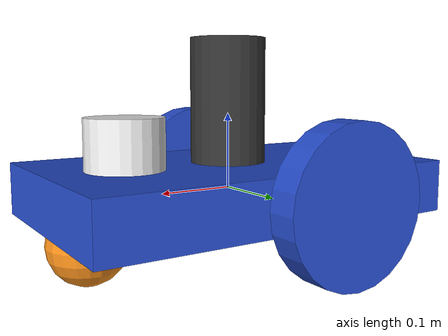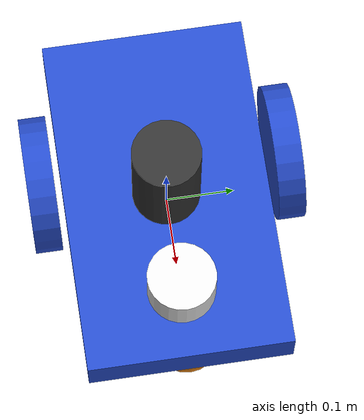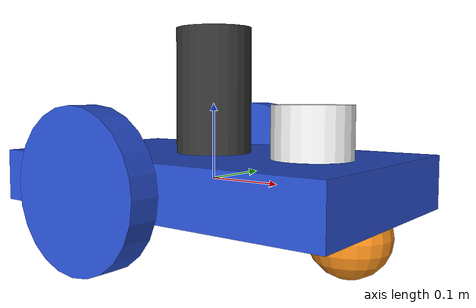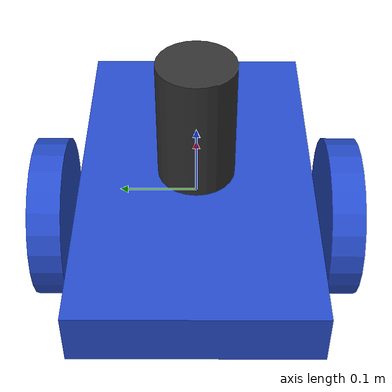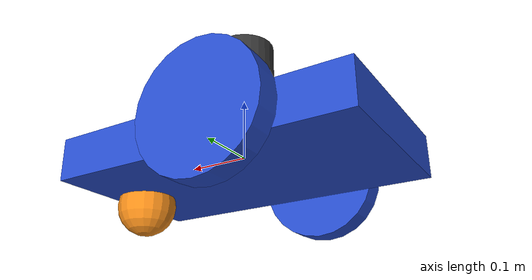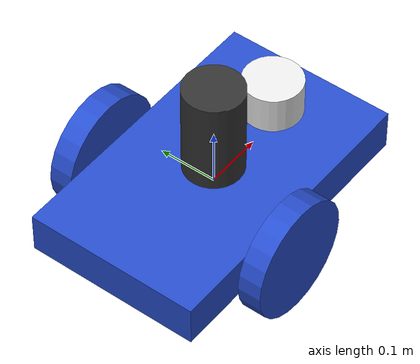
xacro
<?xml version="1.0" ?>
<robot name="m2wr" xmlns:xacro="http://www.ros.org/wiki/xacro">
  <xacro:property name="M_PI" value="3.1415926535897931" />

  <xacro:include filename="$(find m2wr_description)/urdf/materials.xacro" />
  <xacro:include filename="$(find m2wr_description)/urdf/m2wr.gazebo" />
  <xacro:include filename="$(find m2wr_description)/urdf/macros.xacro" />

  <link name="link_chassis">
    <!-- pose and inertial -->
    <pose>0 0 0.1 0 0 0</pose>
    <inertial>
      <mass value="5"/>
      <origin rpy="0 0 0" xyz="0 0 0.1"/>
      <inertia ixx="0.0395416666667" ixy="0" ixz="0" iyy="0.106208333333" iyz="0" izz="0.106208333333"/>
    </inertial>
    <!-- body -->
    <collision name="collision_chassis">
      <geometry>
        <box size="0.5 0.3 0.07"/>
      </geometry>
    </collision>
    <visual>
      <origin rpy="0 0 0" xyz="0 0 0"/>
      <geometry>
        <box size="0.5 0.3 0.07"/>
      </geometry>
      <material name="blue"/>
    </visual>
    <!-- caster front-->
    <collision name="caster_front_collision">
      <origin rpy=" 0 0 0" xyz="0.35 0 -0.05"/>
      <geometry>
        <sphere radius="0.05"/>
      </geometry>
      <surface>
        <friction>
          <ode>
            <mu>0</mu>
            <mu2>0</mu2>
            <slip1>1.0</slip1>
            <slip2>1.0</slip2>
          </ode>
        </friction>
      </surface>
    </collision>
    <visual name="caster_front_visual">
      <origin rpy=" 0 0 0" xyz="0.2 0 -0.05"/>
      <geometry>
        <sphere radius="0.05"/>
      </geometry>
    </visual>>
  </link>

  <link name="sensor_laser">
    <inertial>
      <origin xyz="0 0 0" rpy="0 0 0" />
      <mass value="1" />
      <xacro:cylinder_inertia mass="1" r="0.05" l="0.1" />
    </inertial>

    <visual>
      <origin xyz="0 0 0" rpy="0 0 0" />
      <geometry>
        <cylinder radius="0.05" length="0.1"/>
      </geometry>
      <material name="white" />
    </visual>

    <collision>
      <origin xyz="0 0 0" rpy="0 0 0"/>
      <geometry>
        <cylinder radius="0.05" length="0.1"/>
      </geometry>
    </collision>
  </link>

  <joint name="joint_sensor_laser" type="fixed">
    <origin xyz="0.15 0 0.05" rpy="0 0 0"/>
    <parent link="link_chassis"/>
    <child link="sensor_laser"/>
  </joint>

  <link name="camera_link">
    <collision>
        <origin xyz="0 0 0" rpy="0 0 0" />
        <geometry>
          <cylinder radius="0.05" length="0.2"/>
        </geometry>
    </collision>
    <visual>
        <origin xyz="0 0 0" rpy="0 0 0" />
        <geometry>
          <cylinder radius="0.05" length="0.2"/>
        </geometry>
        <material name="grey">
            <color rgba="0.2 0.2 0.2 1.0"/>
        </material>
    </visual>
    <inertial>
        <mass value="0.001" />
        <origin xyz="0 0 0" rpy="0 0 0" />
        <xacro:cylinder_inertia mass="1" r="0.05" l="0.2" />
      </inertial>
    </link>

<joint name="camera_joint" type="fixed">
        <parent link="link_chassis"/>
        <child link="camera_link"/>
        <origin rpy="0 0 0" xyz="0 0 0.1"/>
        <!--axis xyz="1 0 0" /-->
    </joint>

  <xacro:link_wheel name="link_right_wheel" />
  <xacro:joint_wheel name="joint_right_wheel" child="link_right_wheel" origin_xyz="-0.05 0.18 0" />

  <xacro:link_wheel name="link_left_wheel" />
  <xacro:joint_wheel name="joint_left_wheel" child="link_left_wheel" origin_xyz="-0.05 -0.18 0" />

</robot>

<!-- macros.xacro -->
<robot xmlns:xacro="http://www.ros.org/wiki/xacro">
    <xacro:macro name="link_wheel" params="name">
        <link name="${name}">
            <inertial>
              <mass value="0.2"/>
              <origin rpy="0 1.5707 1.5707" xyz="0 0 0"/>
              <!--inertia ixx="0.000526666666667" ixy="0" ixz="0" iyy="0.000526666666667" iyz="0" izz="0.001"/-->
              <xacro:cylinder_inertia mass="0.2" r="0.1" l="0.04" />
            </inertial>
            <collision name="link_right_wheel_collision">
              <origin rpy="0 1.5707 1.5707" xyz="0 0 0"/>
              <geometry>
                <cylinder length="0.04" radius="0.1"/>
              </geometry>
            </collision>
            <visual name="${name}_visual">
              <origin rpy="0 1.5707 1.5707" xyz="0 0 0"/>
              <geometry>
                <cylinder length="0.04" radius="0.1"/>
              </geometry>
            </visual>
        </link>
    </xacro:macro>

    <xacro:macro name="joint_wheel" params="name child origin_xyz">
      <joint name="${name}" type="continuous">
        <origin rpy="0 0 0" xyz="${origin_xyz}"/>
        <child link="${child}"/>
        <parent link="link_chassis"/>
        <axis rpy="0 0 0" xyz="0 1 0"/>
        <limit effort="10000" velocity="1000"/>
        <joint_properties damping="1.0" friction="1.0"/>
      </joint>
    </xacro:macro>

    <xacro:macro name="cylinder_inertia" params="mass r l">
      <inertia  ixx="${mass*(3*r*r+l*l)/12}" ixy = "0" ixz = "0"
                iyy="${mass*(3*r*r+l*l)/12}" iyz = "0"
                izz="${mass*(r*r)/2}" />
    </xacro:macro>
</robot>
